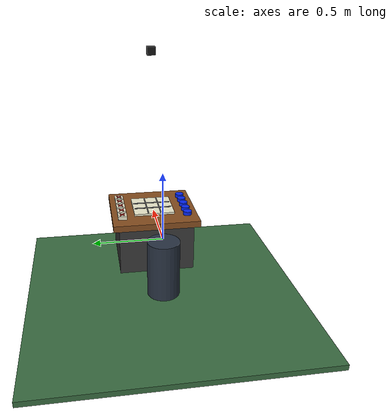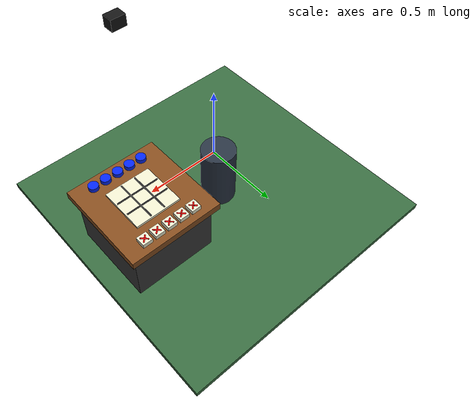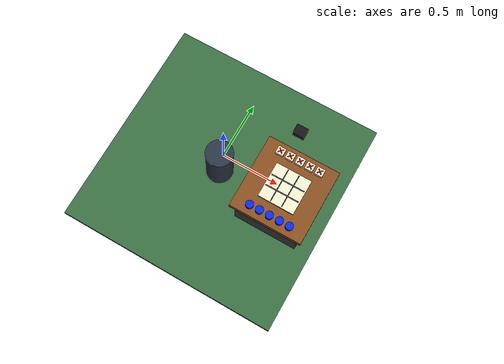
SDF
<?xml version="1.0" ?>
<sdf version="1.9">
  <world name="tic_tac_toe">
    <physics name="2ms" type="ignored">
      <max_step_size>0.002</max_step_size>
      <real_time_factor>1.0</real_time_factor>
      <real_time_update_rate>500</real_time_update_rate>
    </physics>
    <plugin filename="gz-sim-physics-system" name="gz::sim::systems::Physics"/>
    <plugin filename="gz-sim-sensors-system" name="gz::sim::systems::Sensors">
      <render_engine>ogre2</render_engine>
    </plugin>
    <plugin filename="gz-sim-scene-broadcaster-system" name="gz::sim::systems::SceneBroadcaster"/>
    <plugin filename="gz-sim-user-commands-system" name="gz::sim::systems::UserCommands"/>

    <light type="directional" name="sun">
      <pose>0 0 10 0 0 0</pose>
      <diffuse>0.9 0.9 0.9 1</diffuse>
      <specular>0.2 0.2 0.2 1</specular>
      <direction>-0.4 0.2 -0.9</direction>
      <cast_shadows>false</cast_shadows>
    </light>

    <model name="ground_plane">
      <static>true</static><pose>0 0 -0.45 0 0 0</pose>
      <link name="link">
        <collision name="collision"><geometry><box><size>2 2 0.04</size></box></geometry></collision>
        <visual name="visual"><geometry><box><size>2 2 0.04</size></box></geometry>
          <material><ambient>0.16 0.30 0.18 1</ambient><diffuse>0.22 0.42 0.25 1</diffuse></material>
        </visual>
      </link>
    </model>

    <model name="robot_pedestal">
      <static>true</static><pose>-0.04 0 -0.215 0 0 0</pose>
      <link name="link">
        <collision name="collision"><geometry><cylinder><radius>0.12</radius><length>0.43</length></cylinder></geometry></collision>
        <visual name="visual"><geometry><cylinder><radius>0.12</radius><length>0.43</length></cylinder></geometry>
          <material><ambient>0.12 0.15 0.19 1</ambient><diffuse>0.16 0.20 0.26 1</diffuse></material>
        </visual>
      </link>
    </model>

    <model name="table">
      <!-- Top X range is [0.245, 0.895], leaving 165 mm from the offset 0.12 m pedestal. -->
      <static>true</static><pose>0.57 0 -0.025 0 0 0</pose>
      <link name="link">
        <collision name="collision"><geometry><box><size>0.65 0.68 0.05</size></box></geometry></collision>
        <visual name="visual"><geometry><box><size>0.65 0.68 0.05</size></box></geometry>
          <material><ambient>0.42 0.22 0.08 1</ambient><diffuse>0.52 0.30 0.12 1</diffuse></material>
        </visual>
        <collision name="leg_1"><pose>0.27 0.28 -0.225 0 0 0</pose><geometry><box><size>0.04 0.04 0.40</size></box></geometry></collision>
        <collision name="leg_2"><pose>0.27 -0.28 -0.225 0 0 0</pose><geometry><box><size>0.04 0.04 0.40</size></box></geometry></collision>
        <collision name="leg_3"><pose>-0.27 0.28 -0.225 0 0 0</pose><geometry><box><size>0.04 0.04 0.40</size></box></geometry></collision>
        <collision name="leg_4"><pose>-0.27 -0.28 -0.225 0 0 0</pose><geometry><box><size>0.04 0.04 0.40</size></box></geometry></collision>
        <visual name="legs"><pose>0 0 -0.225 0 0 0</pose><geometry><box><size>0.58 0.59 0.40</size></box></geometry><material><ambient>0.18 0.18 0.18 1</ambient><diffuse>0.22 0.22 0.22 1</diffuse></material></visual>
      </link>
    </model>

    <model name="board">
      <static>true</static><pose>0.57 0 0 0 0 0</pose>
      <link name="link">
        <collision name="board_collision"><pose>0 0 0.008 0 0 0</pose><geometry><box><size>0.32 0.32 0.016</size></box></geometry></collision>
        <visual name="board_visual"><pose>0 0 0.008 0 0 0</pose><geometry><box><size>0.32 0.32 0.016</size></box></geometry>
          <material><ambient>0.86 0.85 0.74 1</ambient><diffuse>0.92 0.91 0.80 1</diffuse></material>
        </visual>
        <visual name="vline_1"><pose>0 -0.05 0.019 0 0 0</pose><geometry><box><size>0.30 0.008 0.006</size></box></geometry><material><ambient>0.05 0.05 0.05 1</ambient><diffuse>0.05 0.05 0.05 1</diffuse></material></visual>
        <visual name="vline_2"><pose>0 0.05 0.019 0 0 0</pose><geometry><box><size>0.30 0.008 0.006</size></box></geometry><material><ambient>0.05 0.05 0.05 1</ambient><diffuse>0.05 0.05 0.05 1</diffuse></material></visual>
        <visual name="hline_1"><pose>-0.05 0 0.019 0 0 0</pose><geometry><box><size>0.008 0.30 0.006</size></box></geometry><material><ambient>0.05 0.05 0.05 1</ambient><diffuse>0.05 0.05 0.05 1</diffuse></material></visual>
        <visual name="hline_2"><pose>0.05 0 0.019 0 0 0</pose><geometry><box><size>0.008 0.30 0.006</size></box></geometry><material><ambient>0.05 0.05 0.05 1</ambient><diffuse>0.05 0.05 0.05 1</diffuse></material></visual>
      </link>
    </model>

    <!-- Fixed top-down camera. Its optical +X axis is rotated toward world -Z. -->
    <model name="overhead_camera">
      <static>true</static><pose>0.57 0 1.25 0 1.570796 0</pose>
      <link name="camera_link">
        <visual name="housing"><geometry><box><size>0.06 0.06 0.08</size></box></geometry><material><ambient>0.08 0.08 0.08 1</ambient><diffuse>0.08 0.08 0.08 1</diffuse></material></visual>
        <sensor name="board_camera" type="camera">
          <always_on>true</always_on><update_rate>15</update_rate><topic>/camera/image_raw</topic>
          <camera>
            <horizontal_fov>0.92</horizontal_fov>
            <image><width>640</width><height>480</height><format>R8G8B8</format></image>
            <clip><near>0.05</near><far>3.0</far></clip>
          </camera>
        </sensor>
      </link>
    </model>

    <!-- Human supply: graspable board-coloured squares with a thin red X on top. -->
    <model name="x_piece_1"><pose>0.39 0.26 0.015 0 0 0</pose><link name="x_piece_link_1"><collision name="x_piece_collision_1"><geometry><box><size>0.068 0.068 0.030</size></box></geometry><surface><friction><ode><mu>1.5</mu><mu2>1.5</mu2></ode></friction></surface></collision><visual name="square"><geometry><box><size>0.068 0.068 0.030</size></box></geometry><material><ambient>0.86 0.85 0.74 1</ambient><diffuse>0.92 0.91 0.80 1</diffuse></material></visual><visual name="x_a"><pose>0 0 0.0155 0 0 0.7854</pose><geometry><box><size>0.055 0.009 0.001</size></box></geometry><material><ambient>0.9 0.03 0.03 1</ambient><diffuse>0.9 0.03 0.03 1</diffuse></material></visual><visual name="x_b"><pose>0 0 0.0155 0 0 -0.7854</pose><geometry><box><size>0.055 0.009 0.001</size></box></geometry><material><ambient>0.9 0.03 0.03 1</ambient><diffuse>0.9 0.03 0.03 1</diffuse></material></visual><inertial><mass>0.05</mass><inertia><ixx>0.0000230</ixx><iyy>0.0000230</iyy><izz>0.0000385</izz><ixy>0</ixy><ixz>0</ixz><iyz>0</iyz></inertia></inertial></link></model>
    <model name="x_piece_2"><pose>0.48 0.26 0.015 0 0 0</pose><link name="x_piece_link_2"><collision name="x_piece_collision_2"><geometry><box><size>0.068 0.068 0.030</size></box></geometry><surface><friction><ode><mu>1.5</mu><mu2>1.5</mu2></ode></friction></surface></collision><visual name="square"><geometry><box><size>0.068 0.068 0.030</size></box></geometry><material><ambient>0.86 0.85 0.74 1</ambient><diffuse>0.92 0.91 0.80 1</diffuse></material></visual><visual name="x_a"><pose>0 0 0.0155 0 0 0.7854</pose><geometry><box><size>0.055 0.009 0.001</size></box></geometry><material><ambient>0.9 0.03 0.03 1</ambient><diffuse>0.9 0.03 0.03 1</diffuse></material></visual><visual name="x_b"><pose>0 0 0.0155 0 0 -0.7854</pose><geometry><box><size>0.055 0.009 0.001</size></box></geometry><material><ambient>0.9 0.03 0.03 1</ambient><diffuse>0.9 0.03 0.03 1</diffuse></material></visual><inertial><mass>0.05</mass><inertia><ixx>0.0000230</ixx><iyy>0.0000230</iyy><izz>0.0000385</izz><ixy>0</ixy><ixz>0</ixz><iyz>0</iyz></inertia></inertial></link></model>
    <model name="x_piece_3"><pose>0.57 0.26 0.015 0 0 0</pose><link name="x_piece_link_3"><collision name="x_piece_collision_3"><geometry><box><size>0.068 0.068 0.030</size></box></geometry><surface><friction><ode><mu>1.5</mu><mu2>1.5</mu2></ode></friction></surface></collision><visual name="square"><geometry><box><size>0.068 0.068 0.030</size></box></geometry><material><ambient>0.86 0.85 0.74 1</ambient><diffuse>0.92 0.91 0.80 1</diffuse></material></visual><visual name="x_a"><pose>0 0 0.0155 0 0 0.7854</pose><geometry><box><size>0.055 0.009 0.001</size></box></geometry><material><ambient>0.9 0.03 0.03 1</ambient><diffuse>0.9 0.03 0.03 1</diffuse></material></visual><visual name="x_b"><pose>0 0 0.0155 0 0 -0.7854</pose><geometry><box><size>0.055 0.009 0.001</size></box></geometry><material><ambient>0.9 0.03 0.03 1</ambient><diffuse>0.9 0.03 0.03 1</diffuse></material></visual><inertial><mass>0.05</mass><inertia><ixx>0.0000230</ixx><iyy>0.0000230</iyy><izz>0.0000385</izz><ixy>0</ixy><ixz>0</ixz><iyz>0</iyz></inertia></inertial></link></model>
    <model name="x_piece_4"><pose>0.66 0.26 0.015 0 0 0</pose><link name="x_piece_link_4"><collision name="x_piece_collision_4"><geometry><box><size>0.068 0.068 0.030</size></box></geometry><surface><friction><ode><mu>1.5</mu><mu2>1.5</mu2></ode></friction></surface></collision><visual name="square"><geometry><box><size>0.068 0.068 0.030</size></box></geometry><material><ambient>0.86 0.85 0.74 1</ambient><diffuse>0.92 0.91 0.80 1</diffuse></material></visual><visual name="x_a"><pose>0 0 0.0155 0 0 0.7854</pose><geometry><box><size>0.055 0.009 0.001</size></box></geometry><material><ambient>0.9 0.03 0.03 1</ambient><diffuse>0.9 0.03 0.03 1</diffuse></material></visual><visual name="x_b"><pose>0 0 0.0155 0 0 -0.7854</pose><geometry><box><size>0.055 0.009 0.001</size></box></geometry><material><ambient>0.9 0.03 0.03 1</ambient><diffuse>0.9 0.03 0.03 1</diffuse></material></visual><inertial><mass>0.05</mass><inertia><ixx>0.0000230</ixx><iyy>0.0000230</iyy><izz>0.0000385</izz><ixy>0</ixy><ixz>0</ixz><iyz>0</iyz></inertia></inertial></link></model>
    <model name="x_piece_5"><pose>0.75 0.26 0.015 0 0 0</pose><link name="x_piece_link_5"><collision name="x_piece_collision_5"><geometry><box><size>0.068 0.068 0.030</size></box></geometry><surface><friction><ode><mu>1.5</mu><mu2>1.5</mu2></ode></friction></surface></collision><visual name="square"><geometry><box><size>0.068 0.068 0.030</size></box></geometry><material><ambient>0.86 0.85 0.74 1</ambient><diffuse>0.92 0.91 0.80 1</diffuse></material></visual><visual name="x_a"><pose>0 0 0.0155 0 0 0.7854</pose><geometry><box><size>0.055 0.009 0.001</size></box></geometry><material><ambient>0.9 0.03 0.03 1</ambient><diffuse>0.9 0.03 0.03 1</diffuse></material></visual><visual name="x_b"><pose>0 0 0.0155 0 0 -0.7854</pose><geometry><box><size>0.055 0.009 0.001</size></box></geometry><material><ambient>0.9 0.03 0.03 1</ambient><diffuse>0.9 0.03 0.03 1</diffuse></material></visual><inertial><mass>0.05</mass><inertia><ixx>0.0000230</ixx><iyy>0.0000230</iyy><izz>0.0000385</izz><ixy>0</ixy><ixz>0</ixz><iyz>0</iyz></inertia></inertial></link></model>

    <!-- Blue O supply. Dynamic cylinders attach to the Panda with a native fixed joint. -->
    <model name="o_piece_1"><pose>0.39 -0.26 0.015 0 0 0</pose><link name="o_piece_link_1"><collision name="o_piece_collision_1"><geometry><cylinder><radius>0.034</radius><length>0.030</length></cylinder></geometry><surface><friction><ode><mu>1.5</mu><mu2>1.5</mu2></ode></friction></surface></collision><visual name="visual"><geometry><cylinder><radius>0.034</radius><length>0.030</length></cylinder></geometry><material><ambient>0.02 0.15 0.95 1</ambient><diffuse>0.02 0.15 0.95 1</diffuse></material></visual><inertial><mass>0.05</mass><inertia><ixx>0.0000182</ixx><iyy>0.0000182</iyy><izz>0.0000289</izz><ixy>0</ixy><ixz>0</ixz><iyz>0</iyz></inertia></inertial></link></model>
    <model name="o_piece_2"><pose>0.48 -0.26 0.015 0 0 0</pose><link name="o_piece_link_2"><collision name="o_piece_collision_2"><geometry><cylinder><radius>0.034</radius><length>0.030</length></cylinder></geometry><surface><friction><ode><mu>1.5</mu><mu2>1.5</mu2></ode></friction></surface></collision><visual name="visual"><geometry><cylinder><radius>0.034</radius><length>0.030</length></cylinder></geometry><material><ambient>0.02 0.15 0.95 1</ambient><diffuse>0.02 0.15 0.95 1</diffuse></material></visual><inertial><mass>0.05</mass><inertia><ixx>0.0000182</ixx><iyy>0.0000182</iyy><izz>0.0000289</izz><ixy>0</ixy><ixz>0</ixz><iyz>0</iyz></inertia></inertial></link></model>
    <model name="o_piece_3"><pose>0.57 -0.26 0.015 0 0 0</pose><link name="o_piece_link_3"><collision name="o_piece_collision_3"><geometry><cylinder><radius>0.034</radius><length>0.030</length></cylinder></geometry><surface><friction><ode><mu>1.5</mu><mu2>1.5</mu2></ode></friction></surface></collision><visual name="visual"><geometry><cylinder><radius>0.034</radius><length>0.030</length></cylinder></geometry><material><ambient>0.02 0.15 0.95 1</ambient><diffuse>0.02 0.15 0.95 1</diffuse></material></visual><inertial><mass>0.05</mass><inertia><ixx>0.0000182</ixx><iyy>0.0000182</iyy><izz>0.0000289</izz><ixy>0</ixy><ixz>0</ixz><iyz>0</iyz></inertia></inertial></link></model>
    <model name="o_piece_4"><pose>0.66 -0.26 0.015 0 0 0</pose><link name="o_piece_link_4"><collision name="o_piece_collision_4"><geometry><cylinder><radius>0.034</radius><length>0.030</length></cylinder></geometry><surface><friction><ode><mu>1.5</mu><mu2>1.5</mu2></ode></friction></surface></collision><visual name="visual"><geometry><cylinder><radius>0.034</radius><length>0.030</length></cylinder></geometry><material><ambient>0.02 0.15 0.95 1</ambient><diffuse>0.02 0.15 0.95 1</diffuse></material></visual><inertial><mass>0.05</mass><inertia><ixx>0.0000182</ixx><iyy>0.0000182</iyy><izz>0.0000289</izz><ixy>0</ixy><ixz>0</ixz><iyz>0</iyz></inertia></inertial></link></model>
    <model name="o_piece_5"><pose>0.75 -0.26 0.015 0 0 0</pose><link name="o_piece_link_5"><collision name="o_piece_collision_5"><geometry><cylinder><radius>0.034</radius><length>0.030</length></cylinder></geometry><surface><friction><ode><mu>1.5</mu><mu2>1.5</mu2></ode></friction></surface></collision><visual name="visual"><geometry><cylinder><radius>0.034</radius><length>0.030</length></cylinder></geometry><material><ambient>0.02 0.15 0.95 1</ambient><diffuse>0.02 0.15 0.95 1</diffuse></material></visual><inertial><mass>0.05</mass><inertia><ixx>0.0000182</ixx><iyy>0.0000182</iyy><izz>0.0000289</izz><ixy>0</ixy><ixz>0</ixz><iyz>0</iyz></inertia></inertial></link></model>
  </world>
</sdf>
